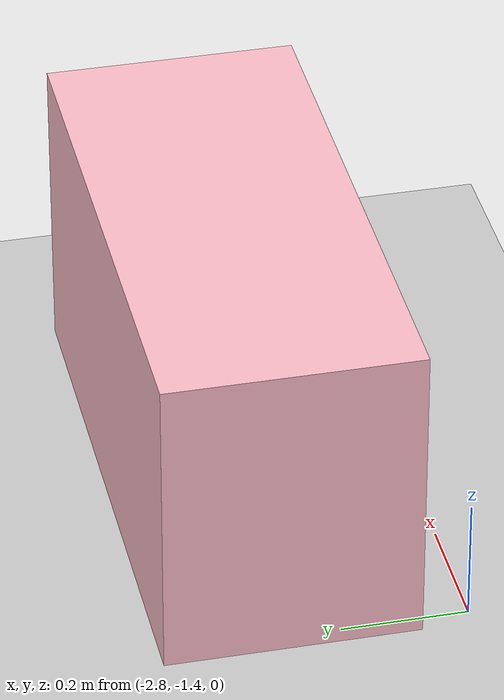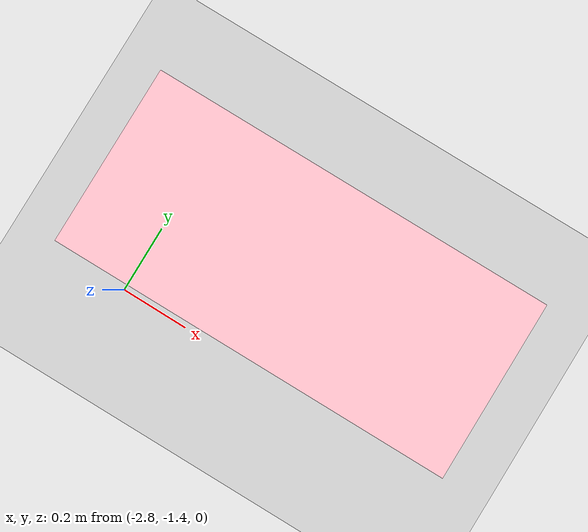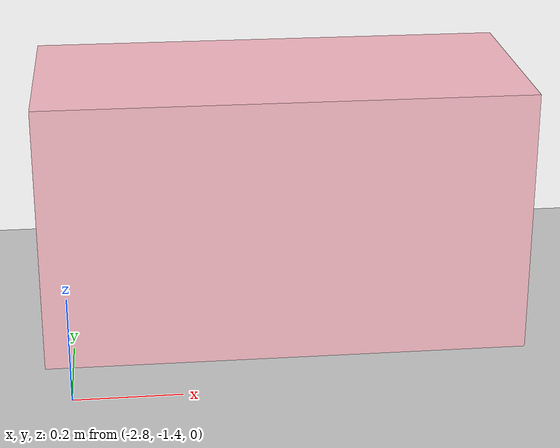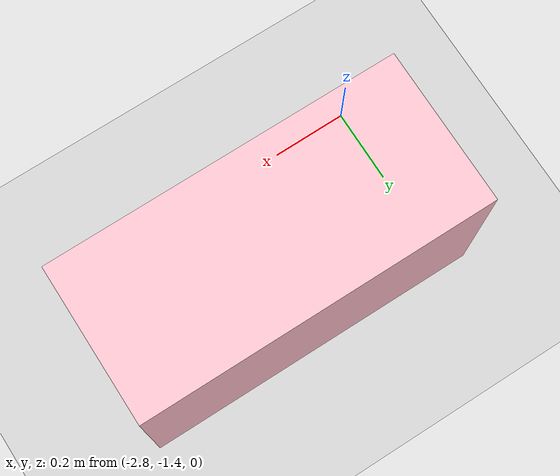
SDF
<sdf version="1.9">
 <world name="pig_pen_8units_world">
  <model name="ground_plane">
   <static>true</static>
   <link name="link">
    <collision name="collision">
     <geometry><plane><normal>0 0 1</normal><size>20 20</size></plane></geometry>
     <surface><friction><ode><mu>1.0</mu><mu2>1.0</mu2></ode></friction></surface>
    </collision>
    <visual name="visual">
     <geometry><plane><normal>0 0 1</normal><size>20 20</size></plane></geometry>
     <material>
      <ambient>0.8 0.8 0.8 1</ambient>
      <diffuse>0.8 0.8 0.8 1</diffuse>
      <specular>0.2 0.2 0.2 1</specular>
     </material>
    </visual>
   </link>
  </model>
  <include><uri>model://farm_pig</uri><name>pig3</name><pose>-2.4 -1.115 0.27 0 0 0</pose></include>
 </world>
</sdf>
